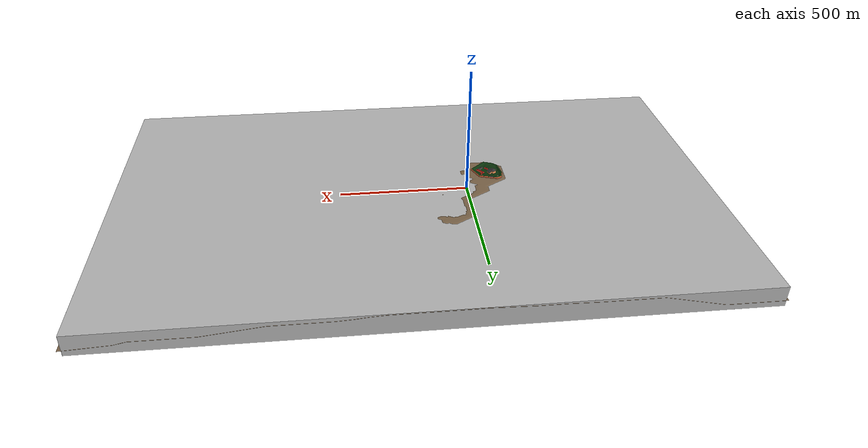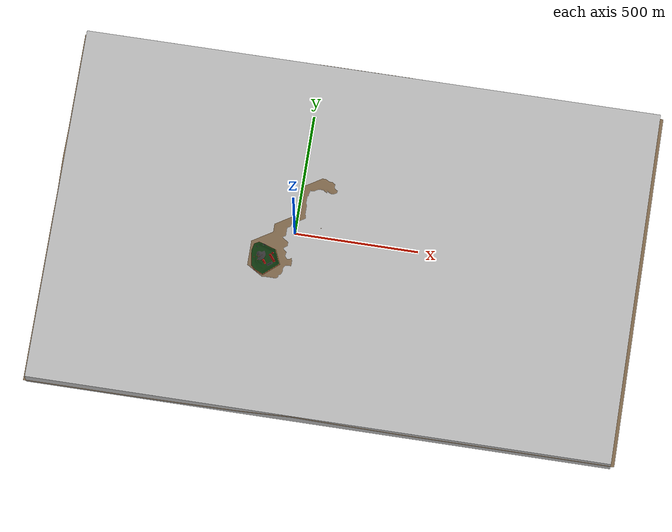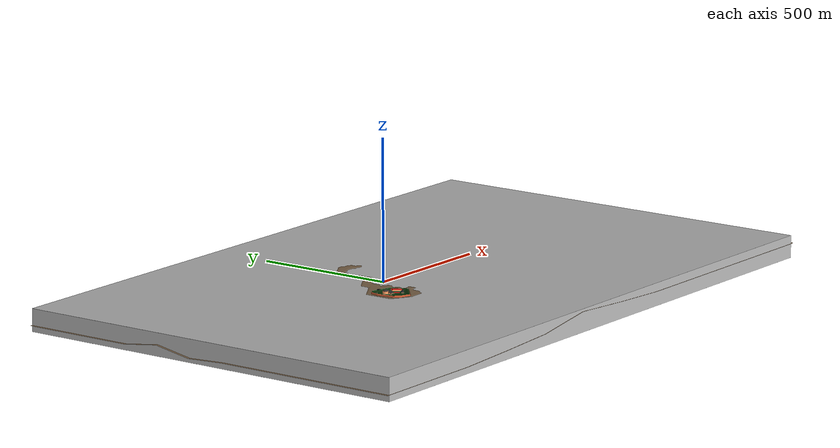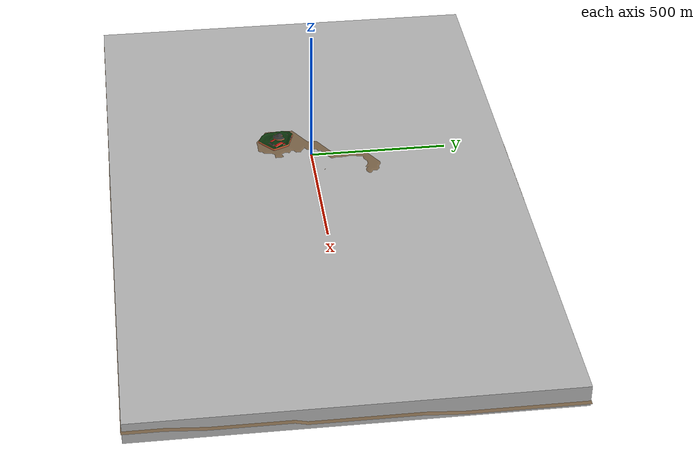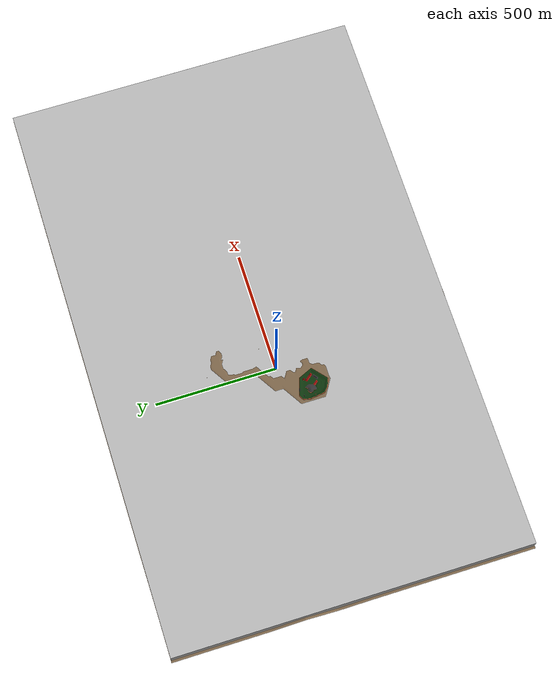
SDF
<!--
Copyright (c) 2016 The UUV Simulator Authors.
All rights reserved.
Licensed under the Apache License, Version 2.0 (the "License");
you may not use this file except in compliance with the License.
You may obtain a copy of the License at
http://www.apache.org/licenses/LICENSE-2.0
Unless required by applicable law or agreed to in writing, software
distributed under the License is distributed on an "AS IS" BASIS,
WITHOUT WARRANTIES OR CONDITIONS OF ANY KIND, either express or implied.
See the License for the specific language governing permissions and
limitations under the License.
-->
<sdf version="1.4">
 <world name="munkholmen">
  <physics name="default_physics" default="true" type="ode">
   <max_step_size>0.01</max_step_size>
   <real_time_factor>1</real_time_factor>
   <real_time_update_rate>100</real_time_update_rate>
   <ode><solver><type>quick</type><iters>50</iters><sor>1.2</sor></solver></ode>
  </physics>
  <scene>
   <ambient>0.01 0.01 0.01 1.0</ambient>
   <sky><clouds><speed>12</speed></clouds></sky>
   <shadows>1</shadows>
  </scene>
  <spherical_coordinates>
   <latitude_deg>63.4520171</latitude_deg>
   <longitude_deg>10.3844778</longitude_deg>
  </spherical_coordinates>
  <light type="directional" name="sun_diffuse_1">
   <pose>-200 -200 100 0 0 0</pose>
   <diffuse>0.6 0.6 0.6 1</diffuse>
   <specular>0 0 0 1</specular>
   <direction>-0.3 -0.3 -1</direction>
  </light>
  <light type="directional" name="sun_diffuse_2">
   <pose>-100 50 200 0 0 0</pose>
   <diffuse>0.6 0.6 0.6 1</diffuse>
   <specular>0 0 0 1</specular>
   <direction>-0.3 -0.3 -1</direction>
  </light>
  <light type="directional" name="sun_diffuse_3">
   <pose>-150 -130 50 0 0 0</pose>
   <diffuse>0.6 0.6 0.6 1</diffuse>
   <specular>0.2 0.2 0.2 1</specular>
   <direction>0.5 0.5 -1</direction>
  </light>
  <include><uri>model://munkholmen_seabed</uri></include>
  <include><uri>model://munkholmen</uri><pose>-103.391 -121.403 0 0 0 0</pose></include>
  <plugin name="underwater_current_plugin" filename="libuuv_underwater_current_ros_plugin.so">
   <namespace>hydrodynamics</namespace>
   <constant_current>
    <topic>current_velocity</topic>
    <velocity><mean>0</mean><min>0</min><max>5</max><mu>0.0</mu><noiseAmp>0.0</noiseAmp></velocity>
    <horizontal_angle>
     <mean>0</mean>
     <min>-3.141592653589793238</min>
     <max>3.141592653589793238</max>
     <mu>0.0</mu>
     <noiseAmp>0.0</noiseAmp>
    </horizontal_angle>
    <vertical_angle>
     <mean>0</mean>
     <min>-3.141592653589793238</min>
     <max>3.141592653589793238</max>
     <mu>0.0</mu>
     <noiseAmp>0.0</noiseAmp>
    </vertical_angle>
   </constant_current>
  </plugin>
  <plugin name="sc_interface" filename="libuuv_sc_ros_interface_plugin.so"/>
 </world>
</sdf>

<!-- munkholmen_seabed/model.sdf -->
<sdf version="1.5">
  <model name="mulkholmen_terrain">
    <static>true</static>
    <link name="link">
      <collision name="seabed">
        <pose>0 0 0 0 0 0</pose>
        <geometry>
          <mesh>
            <uri>model://munkholmen_seabed/meshes/seabed.dae</uri>
            <scale>1.0 1.0 1.0</scale>
          </mesh>
        </geometry>
      </collision>

      <visual name="seabed">
        <cast_shadows>true</cast_shadows>
        <pose>0 0 0 0 0 0</pose>
        <geometry>
          <mesh>
            <scale>1.0 1.0 1.0</scale>
            <uri>model://munkholmen_seabed/meshes/seabed.dae</uri>
          </mesh>
        </geometry>
        <material>
          <script>
            <uri>file://Media/materials/scripts/sand.material</uri>
            <name>UUVSimulator/SandAndStones</name>
          </script>
        </material>
      </visual>
    </link>

    <link name="ocean_link">
      <visual name="surface">
        <pose>207.555145 -12.266886 0.0 0 0 0</pose>
        <geometry>
          <box>
            <size>2361.757812 1474.349 0.1</size>
          </box>
        </geometry>
        <material>
          <script>
            <uri>file://Media/materials/scripts/water.material</uri>
            <name>UUVSimulator/StaticWater</name>
          </script>
        </material>
      </visual>

      <visual name="bottom">
        <pose>207.555145 -12.266886 -80.0 0 0 0</pose>
        <geometry>
          <box>
            <size>2361.757812 1474.349 0.1</size>
          </box>
        </geometry>
        <material>
          <script>
            <uri>file://Media/materials/scripts/water.material</uri>
            <name>UUVSimulator/SeaWall</name>
          </script>
        </material>
      </visual>

      <visual name="north_wall">
        <pose>207.555145 724.907614 -40.0 0 0 0</pose>
        <geometry>
          <box>
            <size>2361.757812 0.1 80</size>
          </box>
        </geometry>
        <material>
          <script>
            <uri>file://Media/materials/scripts/water.material</uri>
            <name>UUVSimulator/SeaWall</name>
          </script>
        </material>
      </visual>

      <visual name="south_wall">
        <pose>207.555145 -749.441386 -40.0 0 0 0</pose>
        <geometry>
          <box>
            <size>2361.757812 0.1 80</size>
          </box>
        </geometry>
        <material>
          <script>
            <uri>file://Media/materials/scripts/water.material</uri>
            <name>UUVSimulator/SeaWall</name>
          </script>
        </material>
      </visual>

      <visual name="east_wall">
        <pose>1388.434051 -12.266886 -40.0 0 0 0</pose>
        <geometry>
          <box>
            <size>0.1 1474.349 80</size>
          </box>
        </geometry>
        <material>
          <script>
            <uri>file://Media/materials/scripts/water.material</uri>
            <name>UUVSimulator/SeaWall</name>
          </script>
        </material>
      </visual>

      <visual name="west_wall">
        <pose>-973.323761 -12.266886 -40.0 0 0 0</pose>
        <geometry>
          <box>
            <size>0.1 1474.349 80</size>
          </box>
        </geometry>
        <material>
          <script>
            <uri>file://Media/materials/scripts/water.material</uri>
            <name>UUVSimulator/SeaWall</name>
          </script>
        </material>
      </visual>
    </link>
  </model>
</sdf>

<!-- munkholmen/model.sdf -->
<sdf version="1.5">
  <model name="mulkholmen_island">
    <static>true</static>
    <link name="mulkholmen_island">
      <collision name="island">
        <pose>0 0 0 0 0 0</pose>
        <geometry>
          <box>
            <size>122.319138 133.827057 17.302723</size>
          </box>
        </geometry>
      </collision>

      <visual name="island">
        <cast_shadows>true</cast_shadows>
        <pose>0 0 0 0 0 0</pose>
        <geometry>
          <mesh>
            <uri>model://munkholmen/meshes/munkholmen.dae</uri>
            <scale>1.0 1.0 1.0</scale>
          </mesh>
        </geometry>
      </visual>
    </link>
  </model>
</sdf>
